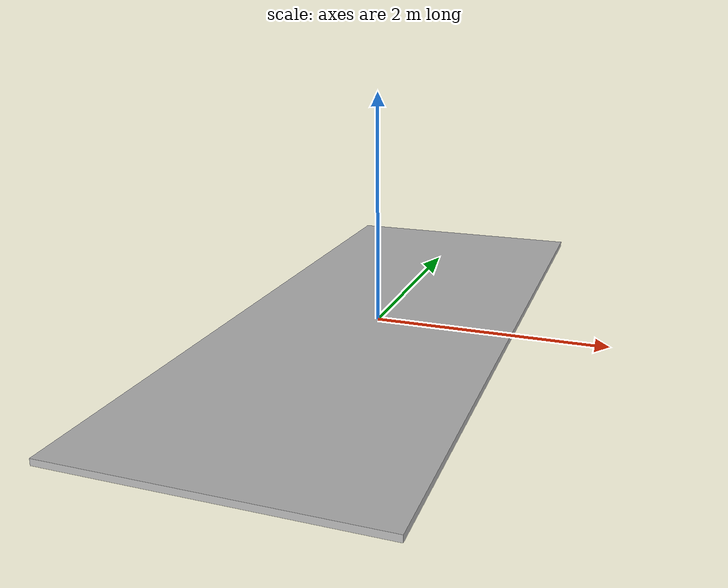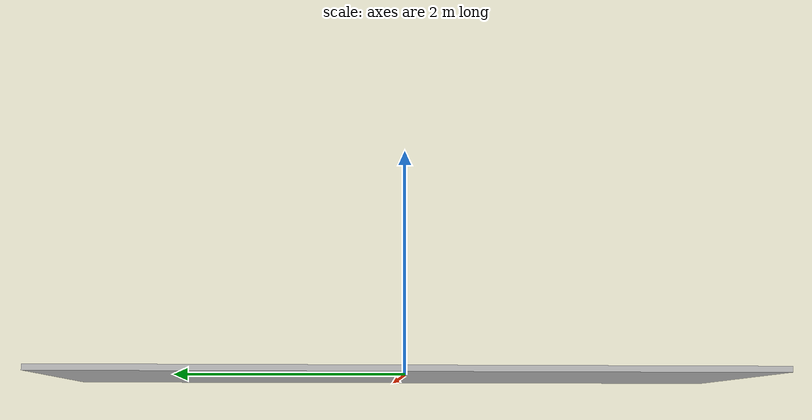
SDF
<?xml version="1.0" ?>
<sdf version="1.5">
  <model name="skyline2">
    <static>true</static>
    <link name="body">
      <pose>0 0 0 0 0 0</pose>
      <visual name="visual">
	<geometry>
	  <box>
	    <size>2.4 6 0.05</size>
	  </box>
	</geometry>
	<material>
	  <script>
            <uri>model://skyline2</uri>
            <name>Melbourne/Diffuse</name>
          </script>
	</material>
      </visual>
    </link>
  </model>
</sdf>
